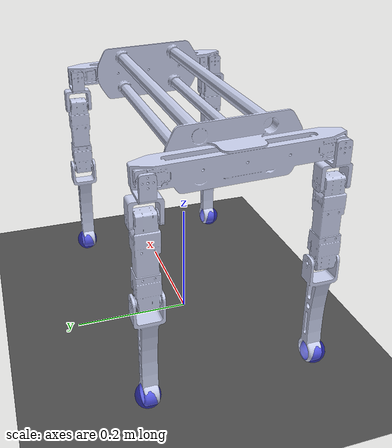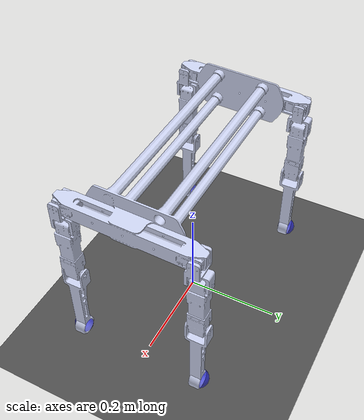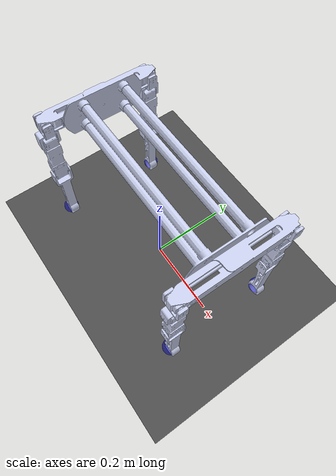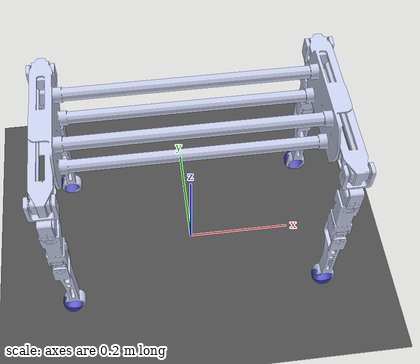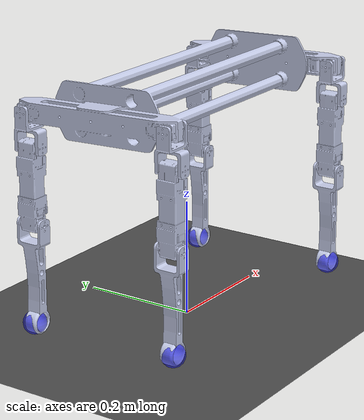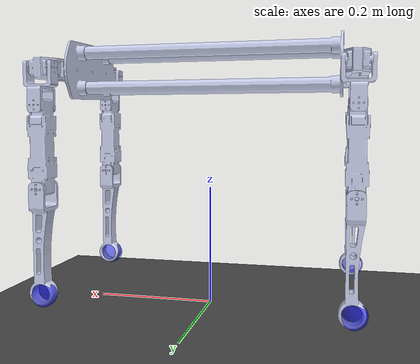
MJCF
<mujoco model="cerbrus_urdf">
  <compiler angle="radian" meshdir="meshes/"/>

  <option timestep="0.001" iterations="100" solver="Newton" gravity="0 0 -9.81">
    <flag warmstart="enable"/>
  </option>

  <default>
    <joint damping="2" armature="0.01" frictionloss="0.2"/>
    <geom friction="0.6 0.5 0.5" condim="3" contype="1" conaffinity="1"/>
    <position kp="100" forcerange="-33.5 33.5"/>
  </default>

  <asset>
    <mesh name="base_link" file="base_link.STL"/>
    <mesh name="front_left_b_link" file="front_left_b_link.STL"/>
    <mesh name="front_left_ul_link" file="front_left_ul_link.STL"/>
    <mesh name="front_left_ll_link" file="front_left_ll_link.STL"/>
    <mesh name="front_right_b_link" file="front_right_b_link.STL"/>
    <mesh name="front_right_ul_link" file="front_right_ul_link.STL"/>
    <mesh name="front_right_ll_link" file="front_right_ll_link.STL"/>
    <mesh name="back_left_b_link" file="back_left_b_link.STL"/>
    <mesh name="back_left_ul_link" file="back_left_ul_link.STL"/>
    <mesh name="back_left_ll_link" file="back_left_ll_link.STL"/>
    <mesh name="back_right_b_link" file="back_right_b_link.STL"/>
    <mesh name="back_right_ul_link" file="back_right_ul_link.STL"/>
    <mesh name="back_right_ll_link" file="back_right_ll_link.STL"/>
  </asset>

  <worldbody>
    <geom name="floor" type="plane" size="10 10 0.1" rgba="0.3 0.3 0.3 1"/>
    <light name="light" pos="0 0 3" dir="0 0 -1"/>

    <body name="base_link" pos="0 0 0.4">
      <freejoint name="root"/>
      <inertial pos="0 0 0" mass="3.0" diaginertia="0.02 0.05 0.05"/>
      <geom type="mesh" mesh="base_link" contype="0" conaffinity="0" rgba="0.79216 0.81961 0.93333 1"/>
      <geom name="base_collision" type="box" size="0.15 0.1 0.05" rgba="1 0 0 0"/>

      <!-- Front Left Leg -->
      <body name="front_left_b_link" pos="0.23983 0.15958 -0.063453">
        <inertial pos="0 0 0" mass="0.1" diaginertia="0.0001 0.0001 0.0001"/>
        <joint name="front_left_b_joint" pos="0 -0.02 0.055" axis="1 0 0" range="-1.57 1.57"/>
        <geom type="mesh" mesh="front_left_b_link" contype="0" conaffinity="0" rgba="0.79216 0.81961 0.93333 1"/>

        <body name="front_left_ul_link" pos="0 -0.005 0">
          <inertial pos="0 0 -0.065" mass="0.15" diaginertia="0.0003 0.0003 0.0001"/>
          <joint name="front_left_ul_joint" axis="0 1 0" range="-1.57 1.57"/>
          <geom type="mesh" mesh="front_left_ul_link" contype="0" conaffinity="0" rgba="0.79216 0.81961 0.93333 1"/>
          <geom name="fl_thigh_col" type="capsule" fromto="0 -0.02 0 0 -0.02 -0.13" size="0.015" rgba="0 1 0 0"/>

          <body name="front_left_ll_link" pos="0 0.004658 -0.13">
            <inertial pos="0 0 -0.09" mass="0.1" diaginertia="0.0002 0.0002 0.00005"/>
            <joint name="front_left_ll_joint" axis="0 1 0" range="-2.7 -0.5"/>
            <geom type="mesh" mesh="front_left_ll_link" contype="0" conaffinity="0" rgba="0.79216 0.81961 0.93333 1"/>
            <geom name="fl_calf_col" type="capsule" fromto="0 -0.02 0 0 -0.02 -0.15" size="0.01" rgba="0 1 0 0"/>
            <geom name="fl_foot" type="sphere" pos="0 -0.02 -0.17" size="0.02" rgba="0 0 1 0.5" friction="1 0.5 0.5"/>
          </body>
        </body>
      </body>

      <!-- Front Right Leg -->
      <body name="front_right_b_link" pos="0.23983 -0.16011 -0.05327">
        <inertial pos="0 0 0" mass="0.1" diaginertia="0.0001 0.0001 0.0001"/>
        <joint name="front_right_b_joint" pos="0 0.02 0.055" axis="1 0 0" range="-1.57 1.57"/>
        <geom type="mesh" mesh="front_right_b_link" contype="0" conaffinity="0" rgba="0.79216 0.81961 0.93333 1"/>

        <body name="front_right_ul_link" pos="0 0.005 0">
          <inertial pos="0 0 -0.065" mass="0.15" diaginertia="0.0003 0.0003 0.0001"/>
          <joint name="front_right_ul_joint" axis="0 1 0" range="-1.57 1.57"/>
          <geom type="mesh" mesh="front_right_ul_link" contype="0" conaffinity="0" rgba="0.79216 0.81961 0.93333 1"/>
          <geom name="fr_thigh_col" type="capsule" fromto="0 0.02 0 0 0.02 -0.13" size="0.015" rgba="0 1 0 0"/>

          <body name="front_right_ll_link" pos="0 -0.002742 -0.13">
            <inertial pos="0 0 -0.09" mass="0.1" diaginertia="0.0002 0.0002 0.00005"/>
            <joint name="front_right_ll_joint" axis="0 1 0" range="-2.7 -0.5"/>
            <geom type="mesh" mesh="front_right_ll_link" contype="0" conaffinity="0" rgba="0.79216 0.81961 0.93333 1"/>
            <geom name="fr_calf_col" type="capsule" fromto="0 0.02 0 0 0.02 -0.15" size="0.01" rgba="0 1 0 0"/>
            <geom name="fr_foot" type="sphere" pos="0 0.02 -0.17" size="0.02" rgba="0 0 1 0.5" friction="1 0.5 0.5"/>
          </body>
        </body>
      </body>

      <!-- Back Left Leg -->
      <body name="back_left_b_link" pos="-0.24033 0.156 -0.064768">
        <inertial pos="0 0 0" mass="0.1" diaginertia="0.0001 0.0001 0.0001"/>
        <joint name="back_left_b_joint" pos="0 -0.02 0.055" axis="1 0 0" range="-1.57 1.57"/>
        <geom type="mesh" mesh="back_left_b_link" contype="0" conaffinity="0" rgba="0.79216 0.81961 0.93333 1"/>

        <body name="back_left_ul_link" pos="0 -0.005 0">
          <inertial pos="0 0 -0.065" mass="0.15" diaginertia="0.0003 0.0003 0.0001"/>
          <joint name="back_left_ul_joint" axis="0 1 0" range="-1.57 1.57"/>
          <geom type="mesh" mesh="back_left_ul_link" contype="0" conaffinity="0" rgba="0.79216 0.81961 0.93333 1"/>
          <geom name="bl_thigh_col" type="capsule" fromto="0 -0.02 0 0 -0.02 -0.13" size="0.015" rgba="0 1 0 0"/>

          <body name="back_left_ll_link" pos="0 0.004658 -0.13">
            <inertial pos="0 0 -0.09" mass="0.1" diaginertia="0.0002 0.0002 0.00005"/>
            <joint name="back_left_ll_joint" axis="0 1 0" range="-2.7 -0.5"/>
            <geom type="mesh" mesh="back_left_ll_link" contype="0" conaffinity="0" rgba="0.79216 0.81961 0.93333 1"/>
            <geom name="bl_calf_col" type="capsule" fromto="0 -0.02 0 0 -0.02 -0.15" size="0.01" rgba="0 1 0 0"/>
            <geom name="bl_foot" type="sphere" pos="0 -0.02 -0.17" size="0.02" rgba="0 0 1 0.5" friction="1 0.5 0.5"/>
          </body>
        </body>
      </body>

      <!-- Back Right Leg -->
      <body name="back_right_b_link" pos="-0.24033 -0.16011 -0.05327">
        <inertial pos="0 0 0" mass="0.1" diaginertia="0.0001 0.0001 0.0001"/>
        <joint name="back_right_b_joint" pos="0 0.02 0.055" axis="1 0 0" range="-1.57 1.57"/>
        <geom type="mesh" mesh="back_right_b_link" contype="0" conaffinity="0" rgba="0.79216 0.81961 0.93333 1"/>

        <body name="back_right_ul_link" pos="0 0.005 0">
          <inertial pos="0 0 -0.065" mass="0.15" diaginertia="0.0003 0.0003 0.0001"/>
          <joint name="back_right_ul_joint" axis="0 1 0" range="-1.57 1.57"/>
          <geom type="mesh" mesh="back_right_ul_link" contype="0" conaffinity="0" rgba="0.79216 0.81961 0.93333 1"/>
          <geom name="br_thigh_col" type="capsule" fromto="0 0.02 0 0 0.02 -0.13" size="0.015" rgba="0 1 0 0"/>

          <body name="back_right_ll_link" pos="0 -0.002742 -0.13">
            <inertial pos="0 0 -0.09" mass="0.1" diaginertia="0.0002 0.0002 0.00005"/>
            <joint name="back_right_ll_joint" axis="0 1 0" range="-2.7 -0.5"/>
            <geom type="mesh" mesh="back_right_ll_link" contype="0" conaffinity="0" rgba="0.79216 0.81961 0.93333 1"/>
            <geom name="br_calf_col" type="capsule" fromto="0 0.02 0 0 0.02 -0.15" size="0.01" rgba="0 1 0 0"/>
            <geom name="br_foot" type="sphere" pos="0 0.02 -0.17" size="0.02" rgba="0 0 1 0.5" friction="1 0.5 0.5"/>
          </body>
        </body>
      </body>
    </body>
  </worldbody>

  <actuator>
    <position name="FR_hip" joint="front_left_b_joint" kp="100" ctrlrange="-1.57 1.57"/>
    <position name="FR_thigh" joint="front_left_ul_joint" kp="100" ctrlrange="-1.57 1.57"/>
    <position name="FR_calf" joint="front_left_ll_joint" kp="100" ctrlrange="-2.7 -0.5"/>
    <position name="FL_hip" joint="front_right_b_joint" kp="100" ctrlrange="-1.57 1.57"/>
    <position name="FL_thigh" joint="front_right_ul_joint" kp="100" ctrlrange="-1.57 1.57"/>
    <position name="FL_calf" joint="front_right_ll_joint" kp="100" ctrlrange="-2.7 -0.5"/>
    <position name="RR_hip" joint="back_left_b_joint" kp="100" ctrlrange="-1.57 1.57"/>
    <position name="RR_thigh" joint="back_left_ul_joint" kp="100" ctrlrange="-1.57 1.57"/>
    <position name="RR_calf" joint="back_left_ll_joint" kp="100" ctrlrange="-2.7 -0.5"/>
    <position name="RL_hip" joint="back_right_b_joint" kp="100" ctrlrange="-1.57 1.57"/>
    <position name="RL_thigh" joint="back_right_ul_joint" kp="100" ctrlrange="-1.57 1.57"/>
    <position name="RL_calf" joint="back_right_ll_joint" kp="100" ctrlrange="-2.7 -0.5"/>
  </actuator>

  <keyframe>
  <key name="standing" qpos="0 0 0.28 1 0 0 0
                             0.0 0.8 -1.6
                             0.0 0.8 -1.6
                             0.0 0.8 -1.6
                             0.0 0.8 -1.6"
                       ctrl="0.0 0.8 -1.6
                             0.0 0.8 -1.6
                             0.0 0.8 -1.6
                             0.0 0.8 -1.6"/>
</keyframe>

</mujoco>
